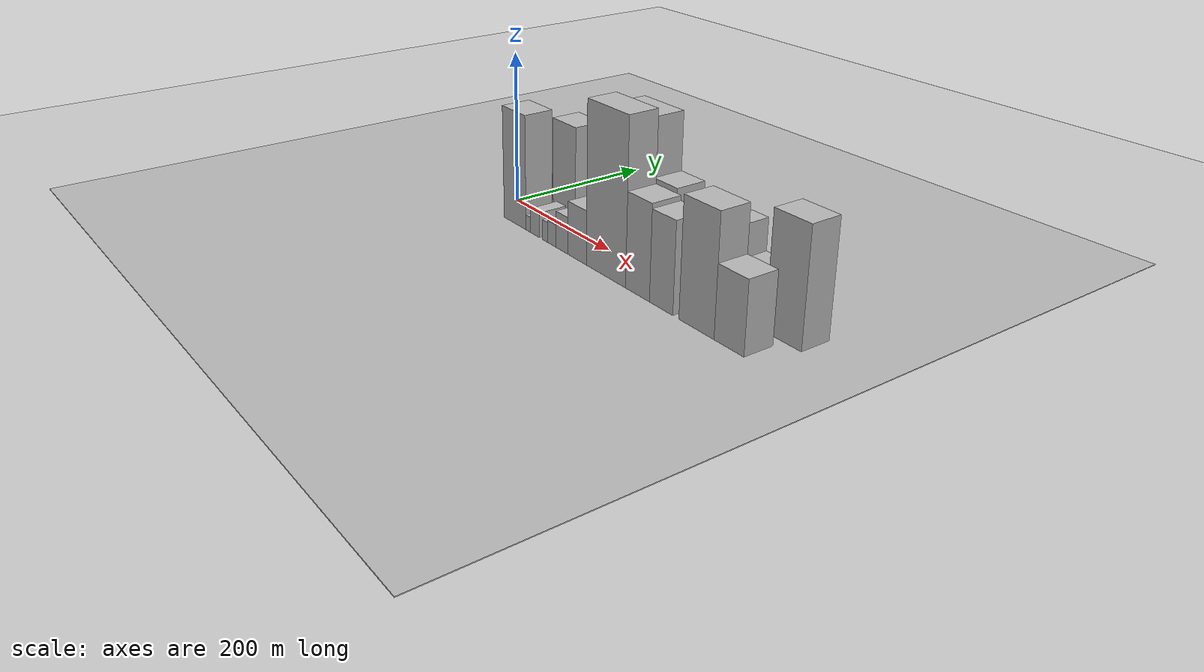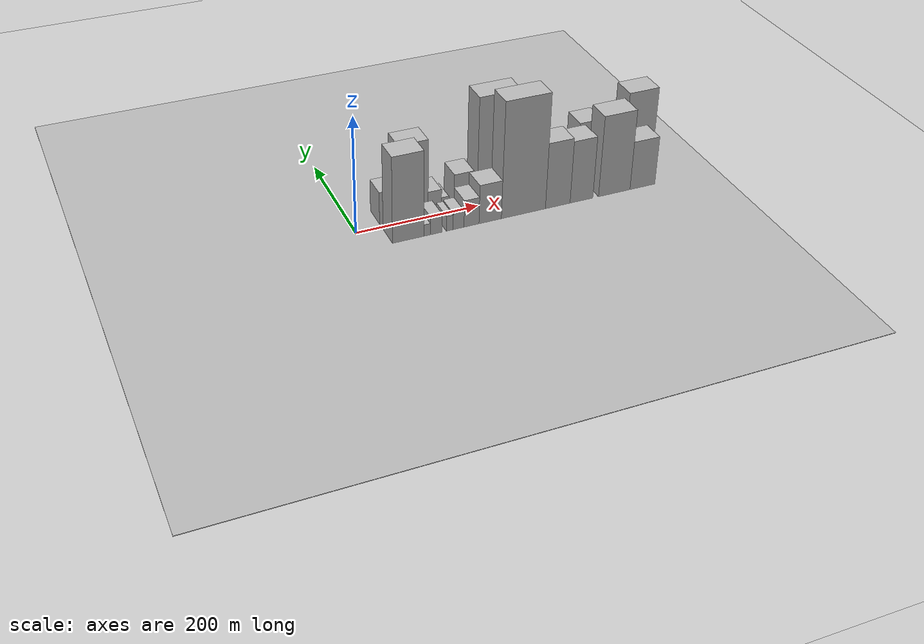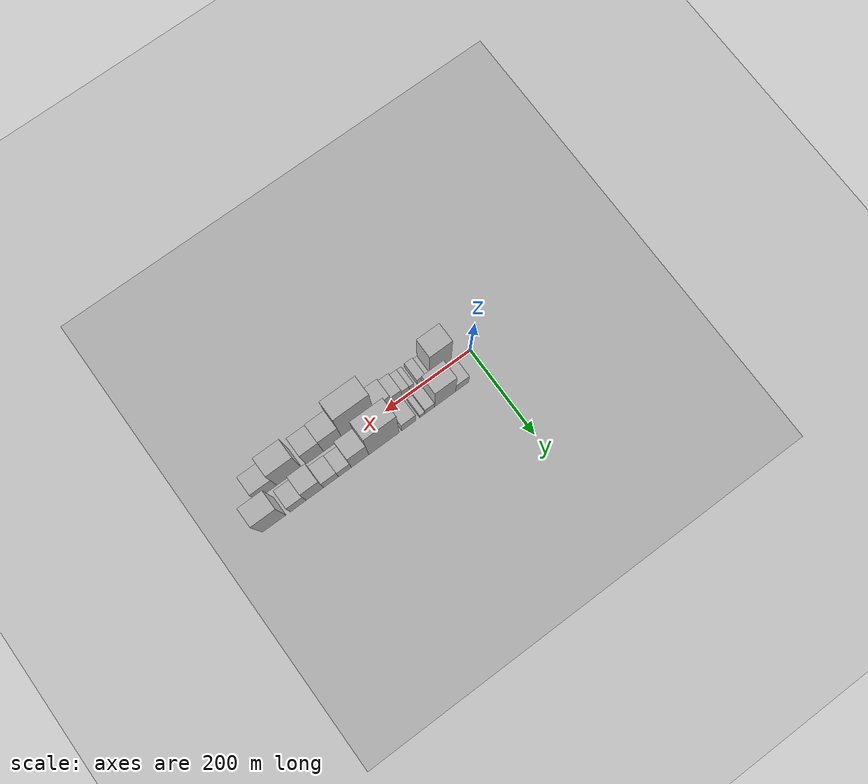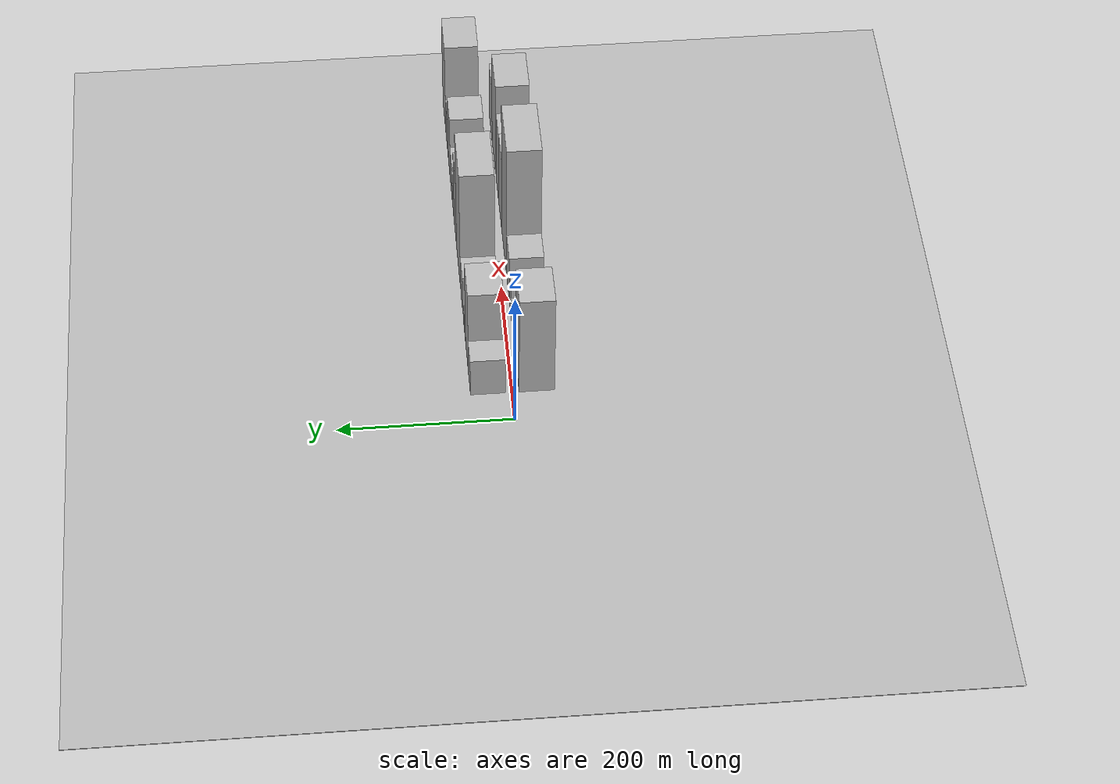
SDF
<?xml version="1.0" encoding="utf-8"?>

<sdf version="1.6">

   <world name="default">

      <gui fullscreen="0">

         <camera name="user_camera">

            <pose>-15 0 4.57585 0 0 0</pose>

            <view_controller>orbit</view_controller>

         </camera>

      </gui>

      <scene>

         <sky>

           <clouds>

             <speed>12</speed>

           </clouds>

         </sky>

         <ambient>0.4 0.4 0.4 1</ambient>

         <background>0.7 0.7 0.7 1</background>

         <shadows>1</shadows>

      </scene>

      <gravity>0 0 -9.8066</gravity>

      <magnetic_field>6e-06 2.3e-05 -4.2e-05</magnetic_field>

      <physics default="0" name="default_physics" type="ode">

         <ode>

            <solver>

               <type>quick</type>

               <iters>10</iters>

               <sor>1.0</sor>

               <use_dynamic_moi_rescaling>0</use_dynamic_moi_rescaling>

            </solver>

            <constraints>

               <cfm>0</cfm>

               <erp>0.2</erp>

               <contact_max_correcting_vel>100</contact_max_correcting_vel>

               <contact_surface_layer>0.001</contact_surface_layer>

            </constraints>

         </ode>

         <max_step_size>0.004</max_step_size>

         <real_time_factor>1</real_time_factor>

         <real_time_update_rate>250</real_time_update_rate>

      </physics>

      <light name="sun" type="directional">

         <cast_shadows>1</cast_shadows>

         <pose>0 0 10 0 0 0</pose>

         <diffuse>0.8 0.8 0.8 1</diffuse>

         <specular>0.2 0.2 0.2 1</specular>

         <attenuation>

            <range>1000</range>

            <constant>0.9</constant>

            <linear>0.01</linear>

            <quadratic>0.001</quadratic>

         </attenuation>

         <direction>-0.5 0.1 -0.9</direction>

      </light>

      <include>

         <name>ground_plane_1</name>

         <uri>model://HANNAS_ground_plane</uri>

         <pose>0 0 0  0 0 0</pose>

      </include>

      <include>

         <name>ground_plane_2</name>

         <uri>model://HANNAS_ground_plane</uri>

         <pose>100 0 0  0 0 0</pose>

      </include>

      <model name="building_1">

         <static>1</static>

         <pose frame="">55.3945 27.5000 0 0.000000 0.000000 1.570796</pose>

         <link name="link">

            <pose frame="">0 0 28.50 0 0 0</pose>

            <collision name="collision">

               <geometry>

                  <box>

                     <size>40.0000 30.7889 57.0000</size>

                  </box>

               </geometry>

               <max_contacts>10</max_contacts>

               <surface>

                  <contact>

                     <ode/>

                  </contact>

                  <bounce/>

                  <friction>

                     <torsional>

                        <ode/>

                     </torsional>

                     <ode/>

                  </friction>

               </surface>

            </collision>

            <visual name="visual">

               <cast_shadows>0</cast_shadows>

               <geometry>

                  <box>

                     <size>40.0000 30.7889 57.0000</size>

                  </box>

               </geometry>

               <material>

                  <script>

                     <uri>model://HANNAS_wall/materials/scripts</uri>

                     <uri>model://HANNAS_wall/materials/textures</uri>

                     <name>vrc/HANNAS_wall</name>

                  </script>

               </material>

            </visual>

            <self_collide>0</self_collide>

            <enable_wind>0</enable_wind>

            <kinematic>0</kinematic>

         </link>

      </model>

      <model name="building_2">

         <static>1</static>

         <pose frame="">95.1698 27.5000 0 0.000000 0.000000 1.570796</pose>

         <link name="link">

            <pose frame="">0 0 66.00 0 0 0</pose>

            <collision name="collision">

               <geometry>

                  <box>

                     <size>40.0000 48.7617 132.0000</size>

                  </box>

               </geometry>

               <max_contacts>10</max_contacts>

               <surface>

                  <contact>

                     <ode/>

                  </contact>

                  <bounce/>

                  <friction>

                     <torsional>

                        <ode/>

                     </torsional>

                     <ode/>

                  </friction>

               </surface>

            </collision>

            <visual name="visual">

               <cast_shadows>0</cast_shadows>

               <geometry>

                  <box>

                     <size>40.0000 48.7617 132.0000</size>

                  </box>

               </geometry>

               <material>

                  <script>

                     <uri>model://HANNAS_wall/materials/scripts</uri>

                     <uri>model://HANNAS_wall/materials/textures</uri>

                     <name>vrc/HANNAS_wall</name>

                  </script>

               </material>

            </visual>

            <self_collide>0</self_collide>

            <enable_wind>0</enable_wind>

            <kinematic>0</kinematic>

         </link>

      </model>

      <model name="building_3">

         <static>1</static>

         <pose frame="">130.7262 27.5000 0 0.000000 0.000000 1.570796</pose>

         <link name="link">

            <pose frame="">0 0 19.50 0 0 0</pose>

            <collision name="collision">

               <geometry>

                  <box>

                     <size>40.0000 22.3511 39.0000</size>

                  </box>

               </geometry>

               <max_contacts>10</max_contacts>

               <surface>

                  <contact>

                     <ode/>

                  </contact>

                  <bounce/>

                  <friction>

                     <torsional>

                        <ode/>

                     </torsional>

                     <ode/>

                  </friction>

               </surface>

            </collision>

            <visual name="visual">

               <cast_shadows>0</cast_shadows>

               <geometry>

                  <box>

                     <size>40.0000 22.3511 39.0000</size>

                  </box>

               </geometry>

               <material>

                  <script>

                     <uri>model://HANNAS_wall/materials/scripts</uri>

                     <uri>model://HANNAS_wall/materials/textures</uri>

                     <name>vrc/HANNAS_wall</name>

                  </script>

               </material>

            </visual>

            <self_collide>0</self_collide>

            <enable_wind>0</enable_wind>

            <kinematic>0</kinematic>

         </link>

      </model>

      <model name="building_4">

         <static>1</static>

         <pose frame="">147.8711 27.5000 0 0.000000 0.000000 1.570796</pose>

         <link name="link">

            <pose frame="">0 0 12.00 0 0 0</pose>

            <collision name="collision">

               <geometry>

                  <box>

                     <size>40.0000 11.9388 24.0000</size>

                  </box>

               </geometry>

               <max_contacts>10</max_contacts>

               <surface>

                  <contact>

                     <ode/>

                  </contact>

                  <bounce/>

                  <friction>

                     <torsional>

                        <ode/>

                     </torsional>

                     <ode/>

                  </friction>

               </surface>

            </collision>

            <visual name="visual">

               <cast_shadows>0</cast_shadows>

               <geometry>

                  <box>

                     <size>40.0000 11.9388 24.0000</size>

                  </box>

               </geometry>

               <material>

                  <script>

                     <uri>model://HANNAS_wall/materials/scripts</uri>

                     <uri>model://HANNAS_wall/materials/textures</uri>

                     <name>vrc/HANNAS_wall</name>

                  </script>

               </material>

            </visual>

            <self_collide>0</self_collide>

            <enable_wind>0</enable_wind>

            <kinematic>0</kinematic>

         </link>

      </model>

      <model name="building_5">

         <static>1</static>

         <pose frame="">179.1904 27.5000 0 0.000000 0.000000 1.570796</pose>

         <link name="link">

            <pose frame="">0 0 30.00 0 0 0</pose>

            <collision name="collision">

               <geometry>

                  <box>

                     <size>40.0000 32.6997 60.0000</size>

                  </box>

               </geometry>

               <max_contacts>10</max_contacts>

               <surface>

                  <contact>

                     <ode/>

                  </contact>

                  <bounce/>

                  <friction>

                     <torsional>

                        <ode/>

                     </torsional>

                     <ode/>

                  </friction>

               </surface>

            </collision>

            <visual name="visual">

               <cast_shadows>0</cast_shadows>

               <geometry>

                  <box>

                     <size>40.0000 32.6997 60.0000</size>

                  </box>

               </geometry>

               <material>

                  <script>

                     <uri>model://HANNAS_wall/materials/scripts</uri>

                     <uri>model://HANNAS_wall/materials/textures</uri>

                     <name>vrc/HANNAS_wall</name>

                  </script>

               </material>

            </visual>

            <self_collide>0</self_collide>

            <enable_wind>0</enable_wind>

            <kinematic>0</kinematic>

         </link>

      </model>

      <model name="building_6">

         <static>1</static>

         <pose frame="">236.2480 27.5000 0 0.000000 0.000000 1.570796</pose>

         <link name="link">

            <pose frame="">0 0 93.00 0 0 0</pose>

            <collision name="collision">

               <geometry>

                  <box>

                     <size>40.0000 69.4156 186.0000</size>

                  </box>

               </geometry>

               <max_contacts>10</max_contacts>

               <surface>

                  <contact>

                     <ode/>

                  </contact>

                  <bounce/>

                  <friction>

                     <torsional>

                        <ode/>

                     </torsional>

                     <ode/>

                  </friction>

               </surface>

            </collision>

            <visual name="visual">

               <cast_shadows>0</cast_shadows>

               <geometry>

                  <box>

                     <size>40.0000 69.4156 186.0000</size>

                  </box>

               </geometry>

               <material>

                  <script>

                     <uri>model://HANNAS_wall/materials/scripts</uri>

                     <uri>model://HANNAS_wall/materials/textures</uri>

                     <name>vrc/HANNAS_wall</name>

                  </script>

               </material>

            </visual>

            <self_collide>0</self_collide>

            <enable_wind>0</enable_wind>

            <kinematic>0</kinematic>

         </link>

      </model>

      <model name="building_7">

         <static>1</static>

         <pose frame="">291.1091 27.5000 0 0.000000 0.000000 1.570796</pose>

         <link name="link">

            <pose frame="">0 0 57.00 0 0 0</pose>

            <collision name="collision">

               <geometry>

                  <box>

                     <size>40.0000 40.3065 114.0000</size>

                  </box>

               </geometry>

               <max_contacts>10</max_contacts>

               <surface>

                  <contact>

                     <ode/>

                  </contact>

                  <bounce/>

                  <friction>

                     <torsional>

                        <ode/>

                     </torsional>

                     <ode/>

                  </friction>

               </surface>

            </collision>

            <visual name="visual">

               <cast_shadows>0</cast_shadows>

               <geometry>

                  <box>

                     <size>40.0000 40.3065 114.0000</size>

                  </box>

               </geometry>

               <material>

                  <script>

                     <uri>model://HANNAS_wall/materials/scripts</uri>

                     <uri>model://HANNAS_wall/materials/textures</uri>

                     <name>vrc/HANNAS_wall</name>

                  </script>

               </material>

            </visual>

            <self_collide>0</self_collide>

            <enable_wind>0</enable_wind>

            <kinematic>0</kinematic>

         </link>

      </model>

      <model name="building_8">

         <static>1</static>

         <pose frame="">325.6375 27.5000 0 0.000000 0.000000 1.570796</pose>

         <link name="link">

            <pose frame="">0 0 27.00 0 0 0</pose>

            <collision name="collision">

               <geometry>

                  <box>

                     <size>40.0000 28.7502 54.0000</size>

                  </box>

               </geometry>

               <max_contacts>10</max_contacts>

               <surface>

                  <contact>

                     <ode/>

                  </contact>

                  <bounce/>

                  <friction>

                     <torsional>

                        <ode/>

                     </torsional>

                     <ode/>

                  </friction>

               </surface>

            </collision>

            <visual name="visual">

               <cast_shadows>0</cast_shadows>

               <geometry>

                  <box>

                     <size>40.0000 28.7502 54.0000</size>

                  </box>

               </geometry>

               <material>

                  <script>

                     <uri>model://HANNAS_wall/materials/scripts</uri>

                     <uri>model://HANNAS_wall/materials/textures</uri>

                     <name>vrc/HANNAS_wall</name>

                  </script>

               </material>

            </visual>

            <self_collide>0</self_collide>

            <enable_wind>0</enable_wind>

            <kinematic>0</kinematic>

         </link>

      </model>

      <model name="building_9">

         <static>1</static>

         <pose frame="">357.0503 27.5000 0 0.000000 0.000000 1.570796</pose>

         <link name="link">

            <pose frame="">0 0 30.00 0 0 0</pose>

            <collision name="collision">

               <geometry>

                  <box>

                     <size>40.0000 34.0755 60.0000</size>

                  </box>

               </geometry>

               <max_contacts>10</max_contacts>

               <surface>

                  <contact>

                     <ode/>

                  </contact>

                  <bounce/>

                  <friction>

                     <torsional>

                        <ode/>

                     </torsional>

                     <ode/>

                  </friction>

               </surface>

            </collision>

            <visual name="visual">

               <cast_shadows>0</cast_shadows>

               <geometry>

                  <box>

                     <size>40.0000 34.0755 60.0000</size>

                  </box>

               </geometry>

               <material>

                  <script>

                     <uri>model://HANNAS_wall/materials/scripts</uri>

                     <uri>model://HANNAS_wall/materials/textures</uri>

                     <name>vrc/HANNAS_wall</name>

                  </script>

               </material>

            </visual>

            <self_collide>0</self_collide>

            <enable_wind>0</enable_wind>

            <kinematic>0</kinematic>

         </link>

      </model>

      <model name="building_10">

         <static>1</static>

         <pose frame="">393.6979 27.5000 0 0.000000 0.000000 1.570796</pose>

         <link name="link">

            <pose frame="">0 0 52.50 0 0 0</pose>

            <collision name="collision">

               <geometry>

                  <box>

                     <size>40.0000 39.2197 105.0000</size>

                  </box>

               </geometry>

               <max_contacts>10</max_contacts>

               <surface>

                  <contact>

                     <ode/>

                  </contact>

                  <bounce/>

                  <friction>

                     <torsional>

                        <ode/>

                     </torsional>

                     <ode/>

                  </friction>

               </surface>

            </collision>

            <visual name="visual">

               <cast_shadows>0</cast_shadows>

               <geometry>

                  <box>

                     <size>40.0000 39.2197 105.0000</size>

                  </box>

               </geometry>

               <material>

                  <script>

                     <uri>model://HANNAS_wall/materials/scripts</uri>

                     <uri>model://HANNAS_wall/materials/textures</uri>

                     <name>vrc/HANNAS_wall</name>

                  </script>

               </material>

            </visual>

            <self_collide>0</self_collide>

            <enable_wind>0</enable_wind>

            <kinematic>0</kinematic>

         </link>

      </model>

      <model name="building_11">

         <static>1</static>

         <pose frame="">430.9724 27.5000 0 0.000000 0.000000 1.570796</pose>

         <link name="link">

            <pose frame="">0 0 33.00 0 0 0</pose>

            <collision name="collision">

               <geometry>

                  <box>

                     <size>40.0000 35.3295 66.0000</size>

                  </box>

               </geometry>

               <max_contacts>10</max_contacts>

               <surface>

                  <contact>

                     <ode/>

                  </contact>

                  <bounce/>

                  <friction>

                     <torsional>

                        <ode/>

                     </torsional>

                     <ode/>

                  </friction>

               </surface>

            </collision>

            <visual name="visual">

               <cast_shadows>0</cast_shadows>

               <geometry>

                  <box>

                     <size>40.0000 35.3295 66.0000</size>

                  </box>

               </geometry>

               <material>

                  <script>

                     <uri>model://HANNAS_wall/materials/scripts</uri>

                     <uri>model://HANNAS_wall/materials/textures</uri>

                     <name>vrc/HANNAS_wall</name>

                  </script>

               </material>

            </visual>

            <self_collide>0</self_collide>

            <enable_wind>0</enable_wind>

            <kinematic>0</kinematic>

         </link>

      </model>

      <model name="building_12">

         <static>1</static>

         <pose frame="">484.7715 27.5000 0 0.000000 0.000000 1.570796</pose>

         <link name="link">

            <pose frame="">0 0 70.50 0 0 0</pose>

            <collision name="collision">

               <geometry>

                  <box>

                     <size>40.0000 52.2686 141.0000</size>

                  </box>

               </geometry>

               <max_contacts>10</max_contacts>

               <surface>

                  <contact>

                     <ode/>

                  </contact>

                  <bounce/>

                  <friction>

                     <torsional>

                        <ode/>

                     </torsional>

                     <ode/>

                  </friction>

               </surface>

            </collision>

            <visual name="visual">

               <cast_shadows>0</cast_shadows>

               <geometry>

                  <box>

                     <size>40.0000 52.2686 141.0000</size>

                  </box>

               </geometry>

               <material>

                  <script>

                     <uri>model://HANNAS_wall/materials/scripts</uri>

                     <uri>model://HANNAS_wall/materials/textures</uri>

                     <name>vrc/HANNAS_wall</name>

                  </script>

               </material>

            </visual>

            <self_collide>0</self_collide>

            <enable_wind>0</enable_wind>

            <kinematic>0</kinematic>

         </link>

      </model>

      <model name="building_13">

         <static>1</static>

         <pose frame="">65.2805 -27.5000 0 0.000000 0.000000 1.570796</pose>

         <link name="link">

            <pose frame="">0 0 75.00 0 0 0</pose>

            <collision name="collision">

               <geometry>

                  <box>

                     <size>40.0000 50.5610 150.0000</size>

                  </box>

               </geometry>

               <max_contacts>10</max_contacts>

               <surface>

                  <contact>

                     <ode/>

                  </contact>

                  <bounce/>

                  <friction>

                     <torsional>

                        <ode/>

                     </torsional>

                     <ode/>

                  </friction>

               </surface>

            </collision>

            <visual name="visual">

               <cast_shadows>0</cast_shadows>

               <geometry>

                  <box>

                     <size>40.0000 50.5610 150.0000</size>

                  </box>

               </geometry>

               <material>

                  <script>

                     <uri>model://HANNAS_wall/materials/scripts</uri>

                     <uri>model://HANNAS_wall/materials/textures</uri>

                     <name>vrc/HANNAS_wall</name>

                  </script>

               </material>

            </visual>

            <self_collide>0</self_collide>

            <enable_wind>0</enable_wind>

            <kinematic>0</kinematic>

         </link>

      </model>

      <model name="building_14">

         <static>1</static>

         <pose frame="">95.6937 -27.5000 0 0.000000 0.000000 1.570796</pose>

         <link name="link">

            <pose frame="">0 0 10.50 0 0 0</pose>

            <collision name="collision">

               <geometry>

                  <box>

                     <size>40.0000 10.2654 21.0000</size>

                  </box>

               </geometry>

               <max_contacts>10</max_contacts>

               <surface>

                  <contact>

                     <ode/>

                  </contact>

                  <bounce/>

                  <friction>

                     <torsional>

                        <ode/>

                     </torsional>

                     <ode/>

                  </friction>

               </surface>

            </collision>

            <visual name="visual">

               <cast_shadows>0</cast_shadows>

               <geometry>

                  <box>

                     <size>40.0000 10.2654 21.0000</size>

                  </box>

               </geometry>

               <material>

                  <script>

                     <uri>model://HANNAS_wall/materials/scripts</uri>

                     <uri>model://HANNAS_wall/materials/textures</uri>

                     <name>vrc/HANNAS_wall</name>

                  </script>

               </material>

            </visual>

            <self_collide>0</self_collide>

            <enable_wind>0</enable_wind>

            <kinematic>0</kinematic>

         </link>

      </model>

      <model name="building_15">

         <static>1</static>

         <pose frame="">110.3955 -27.5000 0 0.000000 0.000000 1.570796</pose>

         <link name="link">

            <pose frame="">0 0 16.50 0 0 0</pose>

            <collision name="collision">

               <geometry>

                  <box>

                     <size>40.0000 19.1383 33.0000</size>

                  </box>

               </geometry>

               <max_contacts>10</max_contacts>

               <surface>

                  <contact>

                     <ode/>

                  </contact>

                  <bounce/>

                  <friction>

                     <torsional>

                        <ode/>

                     </torsional>

                     <ode/>

                  </friction>

               </surface>

            </collision>

            <visual name="visual">

               <cast_shadows>0</cast_shadows>

               <geometry>

                  <box>

                     <size>40.0000 19.1383 33.0000</size>

                  </box>

               </geometry>

               <material>

                  <script>

                     <uri>model://HANNAS_wall/materials/scripts</uri>

                     <uri>model://HANNAS_wall/materials/textures</uri>

                     <name>vrc/HANNAS_wall</name>

                  </script>

               </material>

            </visual>

            <self_collide>0</self_collide>

            <enable_wind>0</enable_wind>

            <kinematic>0</kinematic>

         </link>

      </model>

      <model name="building_16">

         <static>1</static>

         <pose frame="">132.4214 -27.5000 0 0.000000 0.000000 1.570796</pose>

         <link name="link">

            <pose frame="">0 0 13.50 0 0 0</pose>

            <collision name="collision">

               <geometry>

                  <box>

                     <size>40.0000 10.9134 27.0000</size>

                  </box>

               </geometry>

               <max_contacts>10</max_contacts>

               <surface>

                  <contact>

                     <ode/>

                  </contact>

                  <bounce/>

                  <friction>

                     <torsional>

                        <ode/>

                     </torsional>

                     <ode/>

                  </friction>

               </surface>

            </collision>

            <visual name="visual">

               <cast_shadows>0</cast_shadows>

               <geometry>

                  <box>

                     <size>40.0000 10.9134 27.0000</size>

                  </box>

               </geometry>

               <material>

                  <script>

                     <uri>model://HANNAS_wall/materials/scripts</uri>

                     <uri>model://HANNAS_wall/materials/textures</uri>

                     <name>vrc/HANNAS_wall</name>

                  </script>

               </material>

            </visual>

            <self_collide>0</self_collide>

            <enable_wind>0</enable_wind>

            <kinematic>0</kinematic>

         </link>

      </model>

      <model name="building_17">

         <static>1</static>

         <pose frame="">146.8676 -27.5000 0 0.000000 0.000000 1.570796</pose>

         <link name="link">

            <pose frame="">0 0 15.00 0 0 0</pose>

            <collision name="collision">

               <geometry>

                  <box>

                     <size>40.0000 17.9789 30.0000</size>

                  </box>

               </geometry>

               <max_contacts>10</max_contacts>

               <surface>

                  <contact>

                     <ode/>

                  </contact>

                  <bounce/>

                  <friction>

                     <torsional>

                        <ode/>

                     </torsional>

                     <ode/>

                  </friction>

               </surface>

            </collision>

            <visual name="visual">

               <cast_shadows>0</cast_shadows>

               <geometry>

                  <box>

                     <size>40.0000 17.9789 30.0000</size>

                  </box>

               </geometry>

               <material>

                  <script>

                     <uri>model://HANNAS_wall/materials/scripts</uri>

                     <uri>model://HANNAS_wall/materials/textures</uri>

                     <name>vrc/HANNAS_wall</name>

                  </script>

               </material>

            </visual>

            <self_collide>0</self_collide>

            <enable_wind>0</enable_wind>

            <kinematic>0</kinematic>

         </link>

      </model>

      <model name="building_18">

         <static>1</static>

         <pose frame="">168.2518 -27.5000 0 0.000000 0.000000 1.570796</pose>

         <link name="link">

            <pose frame="">0 0 24.00 0 0 0</pose>

            <collision name="collision">

               <geometry>

                  <box>

                     <size>40.0000 24.7896 48.0000</size>

                  </box>

               </geometry>

               <max_contacts>10</max_contacts>

               <surface>

                  <contact>

                     <ode/>

                  </contact>

                  <bounce/>

                  <friction>

                     <torsional>

                        <ode/>

                     </torsional>

                     <ode/>

                  </friction>

               </surface>

            </collision>

            <visual name="visual">

               <cast_shadows>0</cast_shadows>

               <geometry>

                  <box>

                     <size>40.0000 24.7896 48.0000</size>

                  </box>

               </geometry>

               <material>

                  <script>

                     <uri>model://HANNAS_wall/materials/scripts</uri>

                     <uri>model://HANNAS_wall/materials/textures</uri>

                     <name>vrc/HANNAS_wall</name>

                  </script>

               </material>

            </visual>

            <self_collide>0</self_collide>

            <enable_wind>0</enable_wind>

            <kinematic>0</kinematic>

         </link>

      </model>

      <model name="building_19">

         <static>1</static>

         <pose frame="">199.3343 -27.5000 0 0.000000 0.000000 1.570796</pose>

         <link name="link">

            <pose frame="">0 0 34.50 0 0 0</pose>

            <collision name="collision">

               <geometry>

                  <box>

                     <size>40.0000 37.3753 69.0000</size>

                  </box>

               </geometry>

               <max_contacts>10</max_contacts>

               <surface>

                  <contact>

                     <ode/>

                  </contact>

                  <bounce/>

                  <friction>

                     <torsional>

                        <ode/>

                     </torsional>

                     <ode/>

                  </friction>

               </surface>

            </collision>

            <visual name="visual">

               <cast_shadows>0</cast_shadows>

               <geometry>

                  <box>

                     <size>40.0000 37.3753 69.0000</size>

                  </box>

               </geometry>

               <material>

                  <script>

                     <uri>model://HANNAS_wall/materials/scripts</uri>

                     <uri>model://HANNAS_wall/materials/textures</uri>

                     <name>vrc/HANNAS_wall</name>

                  </script>

               </material>

            </visual>

            <self_collide>0</self_collide>

            <enable_wind>0</enable_wind>

            <kinematic>0</kinematic>

         </link>

      </model>

      <model name="building_20">

         <static>1</static>

         <pose frame="">255.3869 -27.5000 0 0.000000 0.000000 1.570796</pose>

         <link name="link">

            <pose frame="">0 0 102.00 0 0 0</pose>

            <collision name="collision">

               <geometry>

                  <box>

                     <size>40.0000 74.7300 204.0000</size>

                  </box>

               </geometry>

               <max_contacts>10</max_contacts>

               <surface>

                  <contact>

                     <ode/>

                  </contact>

                  <bounce/>

                  <friction>

                     <torsional>

                        <ode/>

                     </torsional>

                     <ode/>

                  </friction>

               </surface>

            </collision>

            <visual name="visual">

               <cast_shadows>0</cast_shadows>

               <geometry>

                  <box>

                     <size>40.0000 74.7300 204.0000</size>

                  </box>

               </geometry>

               <material>

                  <script>

                     <uri>model://HANNAS_wall/materials/scripts</uri>

                     <uri>model://HANNAS_wall/materials/textures</uri>

                     <name>vrc/HANNAS_wall</name>

                  </script>

               </material>

            </visual>

            <self_collide>0</self_collide>

            <enable_wind>0</enable_wind>

            <kinematic>0</kinematic>

         </link>

      </model>

      <model name="building_21">

         <static>1</static>

         <pose frame="">314.0035 -27.5000 0 0.000000 0.000000 1.570796</pose>

         <link name="link">

            <pose frame="">0 0 58.50 0 0 0</pose>

            <collision name="collision">

               <geometry>

                  <box>

                     <size>40.0000 42.5032 117.0000</size>

                  </box>

               </geometry>

               <max_contacts>10</max_contacts>

               <surface>

                  <contact>

                     <ode/>

                  </contact>

                  <bounce/>

                  <friction>

                     <torsional>

                        <ode/>

                     </torsional>

                     <ode/>

                  </friction>

               </surface>

            </collision>

            <visual name="visual">

               <cast_shadows>0</cast_shadows>

               <geometry>

                  <box>

                     <size>40.0000 42.5032 117.0000</size>

                  </box>

               </geometry>

               <material>

                  <script>

                     <uri>model://HANNAS_wall/materials/scripts</uri>

                     <uri>model://HANNAS_wall/materials/textures</uri>

                     <name>vrc/HANNAS_wall</name>

                  </script>

               </material>

            </visual>

            <self_collide>0</self_collide>

            <enable_wind>0</enable_wind>

            <kinematic>0</kinematic>

         </link>

      </model>

      <model name="building_22">

         <static>1</static>

         <pose frame="">355.1253 -27.5000 0 0.000000 0.000000 1.570796</pose>

         <link name="link">

            <pose frame="">0 0 55.50 0 0 0</pose>

            <collision name="collision">

               <geometry>

                  <box>

                     <size>40.0000 39.7402 111.0000</size>

                  </box>

               </geometry>

               <max_contacts>10</max_contacts>

               <surface>

                  <contact>

                     <ode/>

                  </contact>

                  <bounce/>

                  <friction>

                     <torsional>

                        <ode/>

                     </torsional>

                     <ode/>

                  </friction>

               </surface>

            </collision>

            <visual name="visual">

               <cast_shadows>0</cast_shadows>

               <geometry>

                  <box>

                     <size>40.0000 39.7402 111.0000</size>

                  </box>

               </geometry>

               <material>

                  <script>

                     <uri>model://HANNAS_wall/materials/scripts</uri>

                     <uri>model://HANNAS_wall/materials/textures</uri>

                     <name>vrc/HANNAS_wall</name>

                  </script>

               </material>

            </visual>

            <self_collide>0</self_collide>

            <enable_wind>0</enable_wind>

            <kinematic>0</kinematic>

         </link>

      </model>

      <model name="building_23">

         <static>1</static>

         <pose frame="">412.8878 -27.5000 0 0.000000 0.000000 1.570796</pose>

         <link name="link">

            <pose frame="">0 0 72.00 0 0 0</pose>

            <collision name="collision">

               <geometry>

                  <box>

                     <size>40.0000 55.7849 144.0000</size>

                  </box>

               </geometry>

               <max_contacts>10</max_contacts>

               <surface>

                  <contact>

                     <ode/>

                  </contact>

                  <bounce/>

                  <friction>

                     <torsional>

                        <ode/>

                     </torsional>

                     <ode/>

                  </friction>

               </surface>

            </collision>

            <visual name="visual">

               <cast_shadows>0</cast_shadows>

               <geometry>

                  <box>

                     <size>40.0000 55.7849 144.0000</size>

                  </box>

               </geometry>

               <material>

                  <script>

                     <uri>model://HANNAS_wall/materials/scripts</uri>

                     <uri>model://HANNAS_wall/materials/textures</uri>

                     <name>vrc/HANNAS_wall</name>

                  </script>

               </material>

            </visual>

            <self_collide>0</self_collide>

            <enable_wind>0</enable_wind>

            <kinematic>0</kinematic>

         </link>

      </model>

      <model name="building_24">

         <static>1</static>

         <pose frame="">463.1515 -27.5000 0 0.000000 0.000000 1.570796</pose>

         <link name="link">

            <pose frame="">0 0 43.50 0 0 0</pose>

            <collision name="collision">

               <geometry>

                  <box>

                     <size>40.0000 44.7425 87.0000</size>

                  </box>

               </geometry>

               <max_contacts>10</max_contacts>

               <surface>

                  <contact>

                     <ode/>

                  </contact>

                  <bounce/>

                  <friction>

                     <torsional>

                        <ode/>

                     </torsional>

                     <ode/>

                  </friction>

               </surface>

            </collision>

            <visual name="visual">

               <cast_shadows>0</cast_shadows>

               <geometry>

                  <box>

                     <size>40.0000 44.7425 87.0000</size>

                  </box>

               </geometry>

               <material>

                  <script>

                     <uri>model://HANNAS_wall/materials/scripts</uri>

                     <uri>model://HANNAS_wall/materials/textures</uri>

                     <name>vrc/HANNAS_wall</name>

                  </script>

               </material>

            </visual>

            <self_collide>0</self_collide>

            <enable_wind>0</enable_wind>

            <kinematic>0</kinematic>

         </link>

      </model>

   </world>

</sdf>

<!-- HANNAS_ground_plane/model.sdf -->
<sdf version="1.4">
<model name="HANNAS_ground_plane">
  <static>true</static>
    <link name="link">
      <collision name="collision">
        <geometry>
          <plane>
            <normal>0 0 1</normal>
            <size>1000 1000</size>
          </plane>
        </geometry>
        <surface>
          <friction>
            <ode>
              <mu>100</mu>
              <mu2>50</mu2>
            </ode>
          </friction>
        </surface>
      </collision>
      <visual name="visual">
        <cast_shadows>false</cast_shadows>
        <geometry>
          <plane>
            <normal>0 0 1</normal>
            <size>1000 1000</size>
          </plane>
        </geometry>
        <material>
          <script>
            <uri>model://HANNAS_ground_plane/materials/scripts/HANNAS_ground_plane.material</uri>
	    <uri>model://HANNAS_ground_plane/materials/textures</uri>
            <name>HANNASGroundPlane/Image</name>
          </script>
        </material>
      </visual>
    </link>
  </model>
</sdf>
